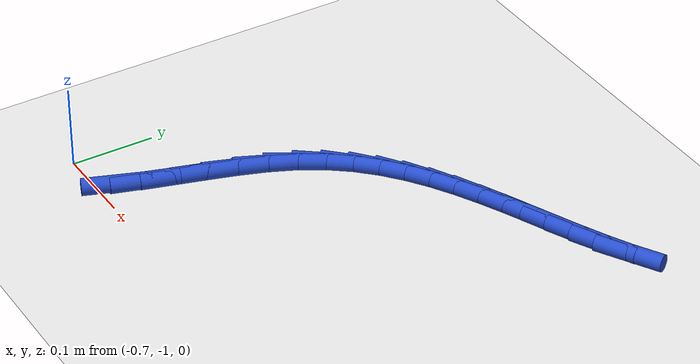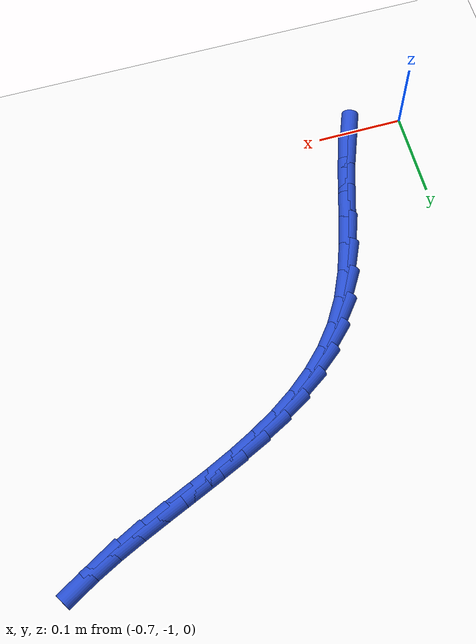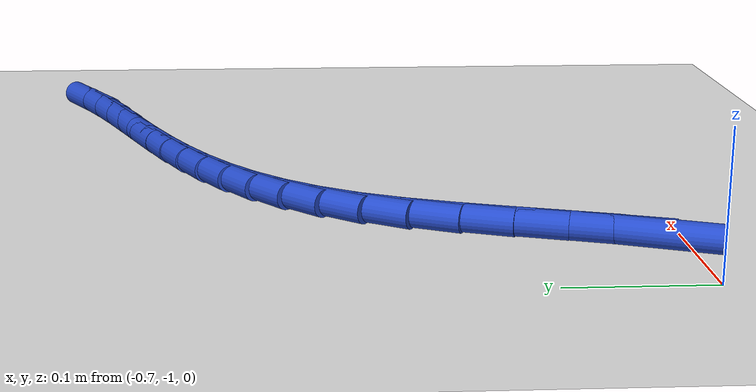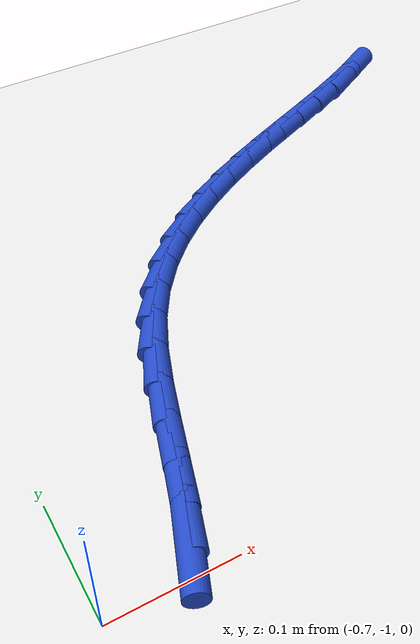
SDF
<sdf version="1.6">
 <world name="default">
  <model name="ground_plane">
   <static>1</static>
   <link name="link">
    <collision name="collision">
     <geometry><plane><normal>0 0 1</normal><size>100 100</size></plane></geometry>
     <surface><friction><ode><mu>100</mu><mu2>50</mu2></ode></friction></surface>
    </collision>
    <visual name="visual">
     <cast_shadows>0</cast_shadows>
     <geometry><plane><normal>0 0 1</normal><size>100 100</size></plane></geometry>
     <material>
      <script><uri>file://media/materials/scripts/gazebo.material</uri><name>Gazebo/WhiteGlow</name></script>
     </material>
    </visual>
   </link>
  </model>
  <model name="line">
   <link name="link_200">
    <pose>-0.6286833559539304 -0.9817438088239596 0.01 0 1.57 1.2037639132042073</pose>
    <collision name="collision">
     <geometry><cylinder><radius>0.01</radius><length>0.08</length></cylinder></geometry>
    </collision>
    <visual name="visual">
     <material>
      <script><name>Gazebo/Blue</name><uri>file://media/materials/scripts/gazebo.material</uri></script>
     </material>
     <geometry><cylinder><radius>0.01</radius><length>0.08</length></cylinder></geometry>
    </visual>
   </link>
   <link name="link_201">
    <pose>-0.617266349774053 -0.9520470588856369 0.01 0 1.57 1.2598429507266742</pose>
    <collision name="collision">
     <geometry><cylinder><radius>0.01</radius><length>0.08</length></cylinder></geometry>
    </collision>
    <visual name="visual">
     <material>
      <script><name>Gazebo/Blue</name><uri>file://media/materials/scripts/gazebo.material</uri></script>
     </material>
     <geometry><cylinder><radius>0.01</radius><length>0.08</length></cylinder></geometry>
    </visual>
   </link>
   <link name="link_202">
    <pose>-0.6068332329723104 -0.9195834695249427 0.01 0 1.57 1.2785886735655323</pose>
    <collision name="collision">
     <geometry><cylinder><radius>0.01</radius><length>0.08</length></cylinder></geometry>
    </collision>
    <visual name="visual">
     <material>
      <script><name>Gazebo/Blue</name><uri>file://media/materials/scripts/gazebo.material</uri></script>
     </material>
     <geometry><cylinder><radius>0.01</radius><length>0.08</length></cylinder></geometry>
    </visual>
   </link>
   <link name="link_203">
    <pose>-0.596607054176689 -0.8855889688672194 0.01 0 1.57 1.2657680361942716</pose>
    <collision name="collision">
     <geometry><cylinder><radius>0.01</radius><length>0.08</length></cylinder></geometry>
    </collision>
    <visual name="visual">
     <material>
      <script><name>Gazebo/Blue</name><uri>file://media/materials/scripts/gazebo.material</uri></script>
     </material>
     <geometry><cylinder><radius>0.01</radius><length>0.08</length></cylinder></geometry>
    </visual>
   </link>
   <link name="link_204">
    <pose>-0.5858108620151752 -0.8512994850378076 0.01 0 1.57 1.2215906397016874</pose>
    <collision name="collision">
     <geometry><cylinder><radius>0.01</radius><length>0.08</length></cylinder></geometry>
    </collision>
    <visual name="visual">
     <material>
      <script><name>Gazebo/Blue</name><uri>file://media/materials/scripts/gazebo.material</uri></script>
     </material>
     <geometry><cylinder><radius>0.01</radius><length>0.08</length></cylinder></geometry>
    </visual>
   </link>
   <link name="link_205">
    <pose>-0.5736677051157555 -0.8179509461620504 0.01 0 1.57 1.1415628222196064</pose>
    <collision name="collision">
     <geometry><cylinder><radius>0.01</radius><length>0.08</length></cylinder></geometry>
    </collision>
    <visual name="visual">
     <material>
      <script><name>Gazebo/Blue</name><uri>file://media/materials/scripts/gazebo.material</uri></script>
     </material>
     <geometry><cylinder><radius>0.01</radius><length>0.08</length></cylinder></geometry>
    </visual>
   </link>
   <link name="link_206">
    <pose>-0.5594006321064162 -0.7867792803652887 0.01 0 1.57 1.0242528835459779</pose>
    <collision name="collision">
     <geometry><cylinder><radius>0.01</radius><length>0.08</length></cylinder></geometry>
    </collision>
    <visual name="visual">
     <material>
      <script><name>Gazebo/Blue</name><uri>file://media/materials/scripts/gazebo.material</uri></script>
     </material>
     <geometry><cylinder><radius>0.01</radius><length>0.08</length></cylinder></geometry>
    </visual>
   </link>
   <link name="link_207">
    <pose>-0.5423819176071963 -0.7588045092149471 0.01 0 1.57 0.9005821095256252</pose>
    <collision name="collision">
     <geometry><cylinder><radius>0.01</radius><length>0.08</length></cylinder></geometry>
    </collision>
    <visual name="visual">
     <material>
      <script><name>Gazebo/Blue</name><uri>file://media/materials/scripts/gazebo.material</uri></script>
     </material>
     <geometry><cylinder><radius>0.01</radius><length>0.08</length></cylinder></geometry>
    </visual>
   </link>
   <link name="link_208">
    <pose>-0.5227140193077853 -0.7339901941333368 0.01 0 1.57 0.7858818708279387</pose>
    <collision name="collision">
     <geometry><cylinder><radius>0.01</radius><length>0.08</length></cylinder></geometry>
    </collision>
    <visual name="visual">
     <material>
      <script><name>Gazebo/Blue</name><uri>file://media/materials/scripts/gazebo.material</uri></script>
     </material>
     <geometry><cylinder><radius>0.01</radius><length>0.08</length></cylinder></geometry>
    </visual>
   </link>
   <link name="link_209">
    <pose>-0.500722381084781 -0.7119772705751634 0.01 0 1.57 0.6842944362839082</pose>
    <collision name="collision">
     <geometry><cylinder><radius>0.01</radius><length>0.08</length></cylinder></geometry>
    </collision>
    <visual name="visual">
     <material>
      <script><name>Gazebo/Blue</name><uri>file://media/materials/scripts/gazebo.material</uri></script>
     </material>
     <geometry><cylinder><radius>0.01</radius><length>0.08</length></cylinder></geometry>
    </visual>
   </link>
   <link name="link_210">
    <pose>-0.47673250209223617 -0.6924065940173382 0.01 0 1.57 0.5981616899592107</pose>
    <collision name="collision">
     <geometry><cylinder><radius>0.01</radius><length>0.08</length></cylinder></geometry>
    </collision>
    <visual name="visual">
     <material>
      <script><name>Gazebo/Blue</name><uri>file://media/materials/scripts/gazebo.material</uri></script>
     </material>
     <geometry><cylinder><radius>0.01</radius><length>0.08</length></cylinder></geometry>
    </visual>
   </link>
   <link name="link_211">
    <pose>-0.45106988148420407 -0.6749190199367727 0.01 0 1.57 0.5282916173993972</pose>
    <collision name="collision">
     <geometry><cylinder><radius>0.01</radius><length>0.08</length></cylinder></geometry>
    </collision>
    <visual name="visual">
     <material>
      <script><name>Gazebo/Blue</name><uri>file://media/materials/scripts/gazebo.material</uri></script>
     </material>
     <geometry><cylinder><radius>0.01</radius><length>0.08</length></cylinder></geometry>
    </visual>
   </link>
   <link name="link_212">
    <pose>-0.4240600184147381 -0.6591554038103794 0.01 0 1.57 0.4745182722314196</pose>
    <collision name="collision">
     <geometry><cylinder><radius>0.01</radius><length>0.08</length></cylinder></geometry>
    </collision>
    <visual name="visual">
     <material>
      <script><name>Gazebo/Blue</name><uri>file://media/materials/scripts/gazebo.material</uri></script>
     </material>
     <geometry><cylinder><radius>0.01</radius><length>0.08</length></cylinder></geometry>
    </visual>
   </link>
   <link name="link_213">
    <pose>-0.39602841203789146 -0.64475660111507 0.01 0 1.57 0.43624988074785637</pose>
    <collision name="collision">
     <geometry><cylinder><radius>0.01</radius><length>0.08</length></cylinder></geometry>
    </collision>
    <visual name="visual">
     <material>
      <script><name>Gazebo/Blue</name><uri>file://media/materials/scripts/gazebo.material</uri></script>
     </material>
     <geometry><cylinder><radius>0.01</radius><length>0.08</length></cylinder></geometry>
    </visual>
   </link>
   <link name="link_214">
    <pose>-0.36730056150771756 -0.6313634673277564 0.01 0 1.57 0.41287111204865096</pose>
    <collision name="collision">
     <geometry><cylinder><radius>0.01</radius><length>0.08</length></cylinder></geometry>
    </collision>
    <visual name="visual">
     <material>
      <script><name>Gazebo/Blue</name><uri>file://media/materials/scripts/gazebo.material</uri></script>
     </material>
     <geometry><cylinder><radius>0.01</radius><length>0.08</length></cylinder></geometry>
    </visual>
   </link>
   <link name="link_215">
    <pose>-0.33820196597826885 -0.6186168579253503 0.01 0 1.57 0.4039931485879745</pose>
    <collision name="collision">
     <geometry><cylinder><radius>0.01</radius><length>0.08</length></cylinder></geometry>
    </collision>
    <visual name="visual">
     <material>
      <script><name>Gazebo/Blue</name><uri>file://media/materials/scripts/gazebo.material</uri></script>
     </material>
     <geometry><cylinder><radius>0.01</radius><length>0.08</length></cylinder></geometry>
    </visual>
   </link>
   <link name="link_216">
    <pose>-0.3090581246036002 -0.606157628384764 0.01 0 1.57 0.4095913183250603</pose>
    <collision name="collision">
     <geometry><cylinder><radius>0.01</radius><length>0.08</length></cylinder></geometry>
    </collision>
    <visual name="visual">
     <material>
      <script><name>Gazebo/Blue</name><uri>file://media/materials/scripts/gazebo.material</uri></script>
     </material>
     <geometry><cylinder><radius>0.01</radius><length>0.08</length></cylinder></geometry>
    </visual>
   </link>
   <link name="link_217">
    <pose>-0.2801945365377641 -0.5936266341829094 0.01 0 1.57 0.4300662496796964</pose>
    <collision name="collision">
     <geometry><cylinder><radius>0.01</radius><length>0.08</length></cylinder></geometry>
    </collision>
    <visual name="visual">
     <material>
      <script><name>Gazebo/Blue</name><uri>file://media/materials/scripts/gazebo.material</uri></script>
     </material>
     <geometry><cylinder><radius>0.01</radius><length>0.08</length></cylinder></geometry>
    </visual>
   </link>
   <link name="link_218">
    <pose>-0.251936700934814 -0.5806647307966984 0.01 0 1.57 0.46623995575691185</pose>
    <collision name="collision">
     <geometry><cylinder><radius>0.01</radius><length>0.08</length></cylinder></geometry>
    </collision>
    <visual name="visual">
     <material>
      <script><name>Gazebo/Blue</name><uri>file://media/materials/scripts/gazebo.material</uri></script>
     </material>
     <geometry><cylinder><radius>0.01</radius><length>0.08</length></cylinder></geometry>
    </visual>
   </link>
   <link name="link_219">
    <pose>-0.2246101169488031 -0.5669127737030428 0.01 0 1.57 0.5192648882515931</pose>
    <collision name="collision">
     <geometry><cylinder><radius>0.01</radius><length>0.08</length></cylinder></geometry>
    </collision>
    <visual name="visual">
     <material>
      <script><name>Gazebo/Blue</name><uri>file://media/materials/scripts/gazebo.material</uri></script>
     </material>
     <geometry><cylinder><radius>0.01</radius><length>0.08</length></cylinder></geometry>
    </visual>
   </link>
  </model>
 </world>
</sdf>
